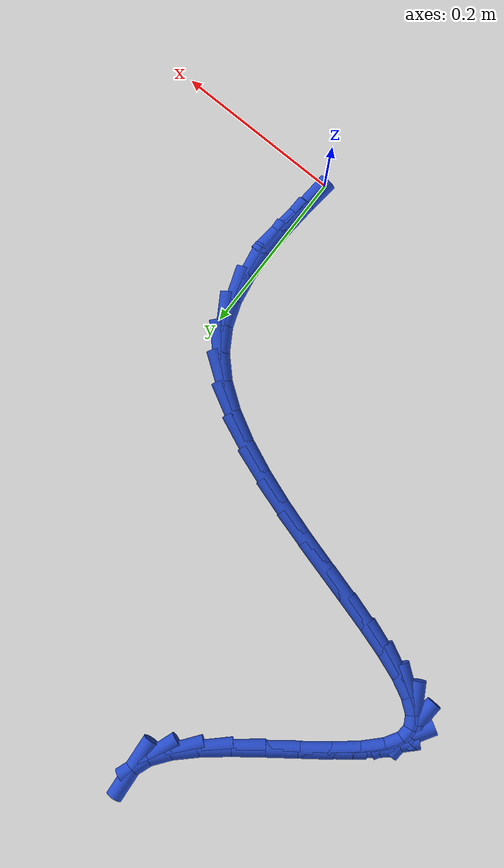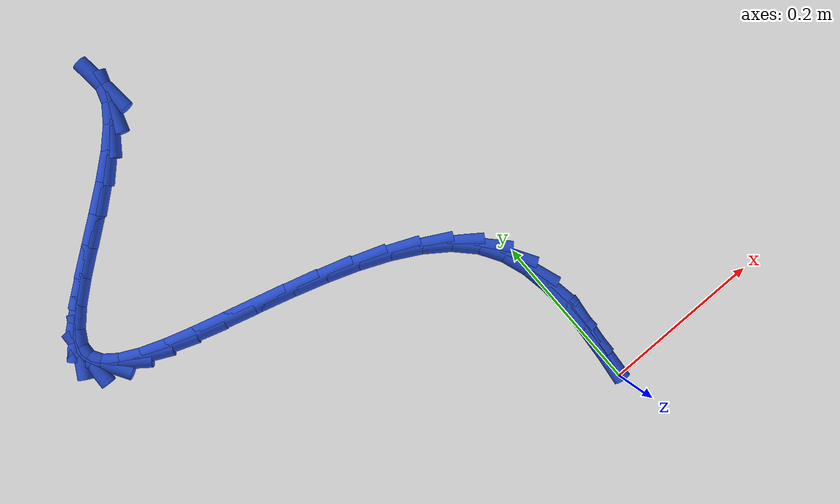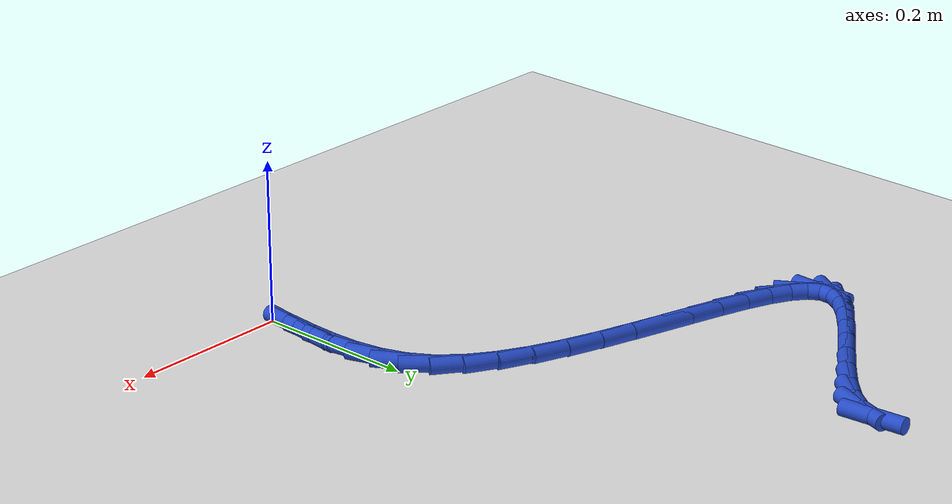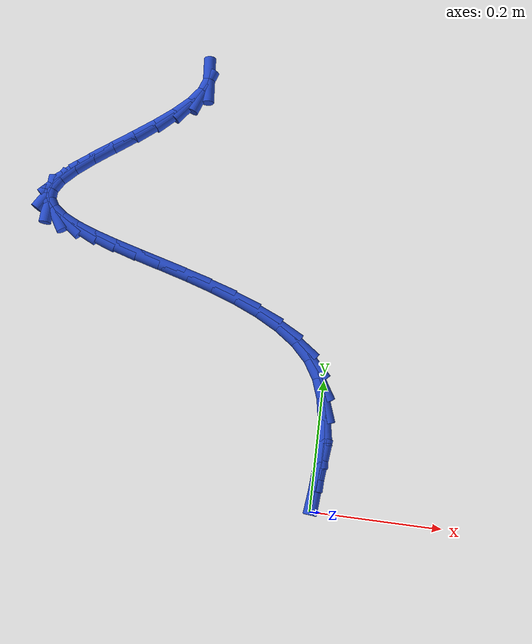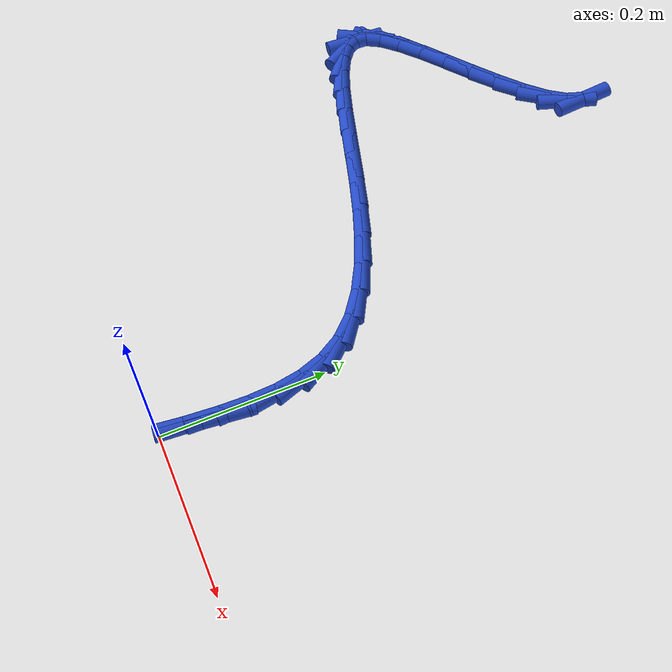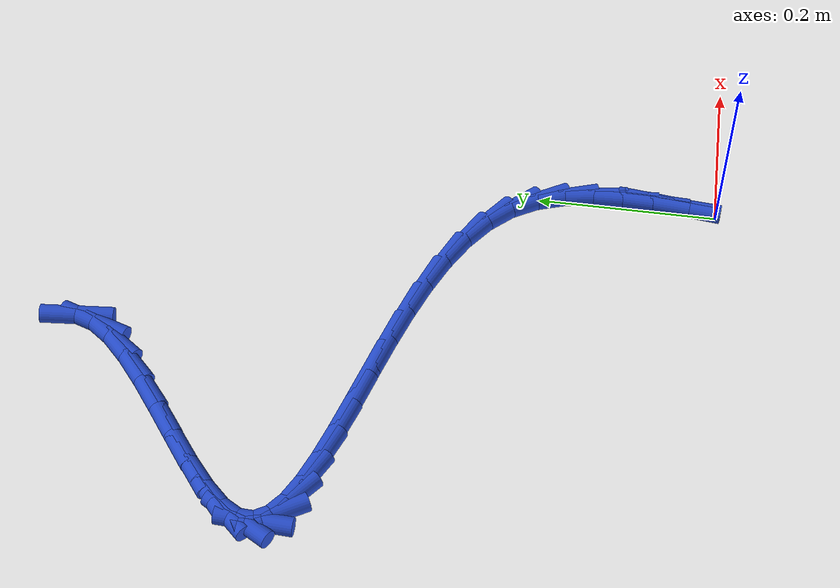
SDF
<sdf version="1.6">
 <world name="default">
  <model name="ground_plane">
   <static>1</static>
   <link name="link">
    <collision name="collision">
     <geometry><plane><normal>0 0 1</normal><size>100 100</size></plane></geometry>
     <surface><friction><ode><mu>100</mu><mu2>50</mu2></ode></friction></surface>
    </collision>
    <visual name="visual">
     <cast_shadows>0</cast_shadows>
     <geometry><plane><normal>0 0 1</normal><size>100 100</size></plane></geometry>
     <material>
      <script><uri>file://media/materials/scripts/gazebo.material</uri><name>Gazebo/WhiteGlow</name></script>
     </material>
    </visual>
   </link>
  </model>
  <model name="line">
   <link name="link_1">
    <pose>0.0034936658325562106 0.03521519313748598 0.01 0 1.57 1.4887428754856245</pose>
    <collision name="collision">
     <geometry><cylinder><radius>0.01</radius><length>0.08</length></cylinder></geometry>
    </collision>
    <visual name="visual">
     <material>
      <script><name>Gazebo/Blue</name><uri>file://media/materials/scripts/gazebo.material</uri></script>
     </material>
     <geometry><cylinder><radius>0.01</radius><length>0.08</length></cylinder></geometry>
    </visual>
   </link>
   <link name="link_2">
    <pose>0.006408961889988054 0.0706646520076782 0.01 0 1.57 1.536097298039894</pose>
    <collision name="collision">
     <geometry><cylinder><radius>0.01</radius><length>0.08</length></cylinder></geometry>
    </collision>
    <visual name="visual">
     <material>
      <script><name>Gazebo/Blue</name><uri>file://media/materials/scripts/gazebo.material</uri></script>
     </material>
     <geometry><cylinder><radius>0.01</radius><length>0.08</length></cylinder></geometry>
    </visual>
   </link>
   <link name="link_3">
    <pose>0.007626882758057852 0.10575013050941472 0.01 0 1.57 -1.5239868349404162</pose>
    <collision name="collision">
     <geometry><cylinder><radius>0.01</radius><length>0.08</length></cylinder></geometry>
    </collision>
    <visual name="visual">
     <material>
      <script><name>Gazebo/Blue</name><uri>file://media/materials/scripts/gazebo.material</uri></script>
     </material>
     <geometry><cylinder><radius>0.01</radius><length>0.08</length></cylinder></geometry>
    </visual>
   </link>
   <link name="link_4">
    <pose>0.006028423022527976 0.1398733825415338 0.01 0 1.57 -1.4024606938984574</pose>
    <collision name="collision">
     <geometry><cylinder><radius>0.01</radius><length>0.08</length></cylinder></geometry>
    </collision>
    <visual name="visual">
     <material>
      <script><name>Gazebo/Blue</name><uri>file://media/materials/scripts/gazebo.material</uri></script>
     </material>
     <geometry><cylinder><radius>0.01</radius><length>0.08</length></cylinder></geometry>
    </visual>
   </link>
   <link name="link_5">
    <pose>0.0004945772691608008 0.17243616200287354 0.01 0 1.57 -1.2356807022298957</pose>
    <collision name="collision">
     <geometry><cylinder><radius>0.01</radius><length>0.08</length></cylinder></geometry>
    </collision>
    <visual name="visual">
     <material>
      <script><name>Gazebo/Blue</name><uri>file://media/materials/scripts/gazebo.material</uri></script>
     </material>
     <geometry><cylinder><radius>0.01</radius><length>0.08</length></cylinder></geometry>
    </visual>
   </link>
   <link name="link_6">
    <pose>-0.010093659916281299 0.2028402227922723 0.01 0 1.57 -1.0257785120612315</pose>
    <collision name="collision">
     <geometry><cylinder><radius>0.01</radius><length>0.08</length></cylinder></geometry>
    </collision>
    <visual name="visual">
     <material>
      <script><name>Gazebo/Blue</name><uri>file://media/materials/scripts/gazebo.material</uri></script>
     </material>
     <geometry><cylinder><radius>0.01</radius><length>0.08</length></cylinder></geometry>
    </visual>
   </link>
   <link name="link_7">
    <pose>-0.026855293948035965 0.2304873188085681 0.01 0 1.57 -0.8015866358535872</pose>
    <collision name="collision">
     <geometry><cylinder><radius>0.01</radius><length>0.08</length></cylinder></geometry>
    </collision>
    <visual name="visual">
     <material>
      <script><name>Gazebo/Blue</name><uri>file://media/materials/scripts/gazebo.material</uri></script>
     </material>
     <geometry><cylinder><radius>0.01</radius><length>0.08</length></cylinder></geometry>
    </visual>
   </link>
   <link name="link_8">
    <pose>-0.050527521842968964 0.2549386618676007 0.01 0 1.57 -0.624680463261912</pose>
    <collision name="collision">
     <geometry><cylinder><radius>0.01</radius><length>0.08</length></cylinder></geometry>
    </collision>
    <visual name="visual">
     <material>
      <script><name>Gazebo/Blue</name><uri>file://media/materials/scripts/gazebo.material</uri></script>
     </material>
     <geometry><cylinder><radius>0.01</radius><length>0.08</length></cylinder></geometry>
    </visual>
   </link>
   <link name="link_9">
    <pose>-0.08029753828067984 0.27640280456071237 0.01 0 1.57 -0.49808622027171306</pose>
    <collision name="collision">
     <geometry><cylinder><radius>0.01</radius><length>0.08</length></cylinder></geometry>
    </collision>
    <visual name="visual">
     <material>
      <script><name>Gazebo/Blue</name><uri>file://media/materials/scripts/gazebo.material</uri></script>
     </material>
     <geometry><cylinder><radius>0.01</radius><length>0.08</length></cylinder></geometry>
    </visual>
   </link>
   <link name="link_10">
    <pose>-0.11495926056426602 0.2952525472844073 0.01 0 1.57 -0.4087093442081795</pose>
    <collision name="collision">
     <geometry><cylinder><radius>0.01</radius><length>0.08</length></cylinder></geometry>
    </collision>
    <visual name="visual">
     <material>
      <script><name>Gazebo/Blue</name><uri>file://media/materials/scripts/gazebo.material</uri></script>
     </material>
     <geometry><cylinder><radius>0.01</radius><length>0.08</length></cylinder></geometry>
    </visual>
   </link>
   <link name="link_11">
    <pose>-0.15330660595031415 0.31186069045461484 0.01 0 1.57 -0.3464587325183403</pose>
    <collision name="collision">
     <geometry><cylinder><radius>0.01</radius><length>0.08</length></cylinder></geometry>
    </collision>
    <visual name="visual">
     <material>
      <script><name>Gazebo/Blue</name><uri>file://media/materials/scripts/gazebo.material</uri></script>
     </material>
     <geometry><cylinder><radius>0.01</radius><length>0.08</length></cylinder></geometry>
    </visual>
   </link>
   <link name="link_12">
    <pose>-0.19413349169541058 0.32660003448726405 0.01 0 1.57 -0.3047661399730271</pose>
    <collision name="collision">
     <geometry><cylinder><radius>0.01</radius><length>0.08</length></cylinder></geometry>
    </collision>
    <visual name="visual">
     <material>
      <script><name>Gazebo/Blue</name><uri>file://media/materials/scripts/gazebo.material</uri></script>
     </material>
     <geometry><cylinder><radius>0.01</radius><length>0.08</length></cylinder></geometry>
    </visual>
   </link>
   <link name="link_13">
    <pose>-0.23623383505614207 0.3398433797982843 0.01 0 1.57 -0.2798825315152923</pose>
    <collision name="collision">
     <geometry><cylinder><radius>0.01</radius><length>0.08</length></cylinder></geometry>
    </collision>
    <visual name="visual">
     <material>
      <script><name>Gazebo/Blue</name><uri>file://media/materials/scripts/gazebo.material</uri></script>
     </material>
     <geometry><cylinder><radius>0.01</radius><length>0.08</length></cylinder></geometry>
    </visual>
   </link>
   <link name="link_14">
    <pose>-0.2784015532890951 0.35196352680360454 0.01 0 1.57 -0.27033132914279184</pose>
    <collision name="collision">
     <geometry><cylinder><radius>0.01</radius><length>0.08</length></cylinder></geometry>
    </collision>
    <visual name="visual">
     <material>
      <script><name>Gazebo/Blue</name><uri>file://media/materials/scripts/gazebo.material</uri></script>
     </material>
     <geometry><cylinder><radius>0.01</radius><length>0.08</length></cylinder></geometry>
    </visual>
   </link>
   <link name="link_15">
    <pose>-0.3194305636508561 0.363333275919154 0.01 0 1.57 -0.27685356769774777</pose>
    <collision name="collision">
     <geometry><cylinder><radius>0.01</radius><length>0.08</length></cylinder></geometry>
    </collision>
    <visual name="visual">
     <material>
      <script><name>Gazebo/Blue</name><uri>file://media/materials/scripts/gazebo.material</uri></script>
     </material>
     <geometry><cylinder><radius>0.01</radius><length>0.08</length></cylinder></geometry>
    </visual>
   </link>
   <link name="link_16">
    <pose>-0.3581147833980116 0.37432542756086185 0.01 0 1.57 -0.3030970668714215</pose>
    <collision name="collision">
     <geometry><cylinder><radius>0.01</radius><length>0.08</length></cylinder></geometry>
    </collision>
    <visual name="visual">
     <material>
      <script><name>Gazebo/Blue</name><uri>file://media/materials/scripts/gazebo.material</uri></script>
     </material>
     <geometry><cylinder><radius>0.01</radius><length>0.08</length></cylinder></geometry>
    </visual>
   </link>
   <link name="link_17">
    <pose>-0.39324812978714846 0.3853127821446573 0.01 0 1.57 -0.35773735814414226</pose>
    <collision name="collision">
     <geometry><cylinder><radius>0.01</radius><length>0.08</length></cylinder></geometry>
    </collision>
    <visual name="visual">
     <material>
      <script><name>Gazebo/Blue</name><uri>file://media/materials/scripts/gazebo.material</uri></script>
     </material>
     <geometry><cylinder><radius>0.01</radius><length>0.08</length></cylinder></geometry>
    </visual>
   </link>
   <link name="link_18">
    <pose>-0.4236245200748529 0.39666814008646956 0.01 0 1.57 -0.46001962723984324</pose>
    <collision name="collision">
     <geometry><cylinder><radius>0.01</radius><length>0.08</length></cylinder></geometry>
    </collision>
    <visual name="visual">
     <material>
      <script><name>Gazebo/Blue</name><uri>file://media/materials/scripts/gazebo.material</uri></script>
     </material>
     <geometry><cylinder><radius>0.01</radius><length>0.08</length></cylinder></geometry>
    </visual>
   </link>
   <link name="link_19">
    <pose>-0.44803787151771163 0.40876430180222756 0.01 0 1.57 -0.6536877796746867</pose>
    <collision name="collision">
     <geometry><cylinder><radius>0.01</radius><length>0.08</length></cylinder></geometry>
    </collision>
    <visual name="visual">
     <material>
      <script><name>Gazebo/Blue</name><uri>file://media/materials/scripts/gazebo.material</uri></script>
     </material>
     <geometry><cylinder><radius>0.01</radius><length>0.08</length></cylinder></geometry>
    </visual>
   </link>
   <link name="link_20">
    <pose>-0.46528210137231124 0.4219740677078609 0.01 0 1.57 -1.0278129257595885</pose>
    <collision name="collision">
     <geometry><cylinder><radius>0.01</radius><length>0.08</length></cylinder></geometry>
    </collision>
    <visual name="visual">
     <material>
      <script><name>Gazebo/Blue</name><uri>file://media/materials/scripts/gazebo.material</uri></script>
     </material>
     <geometry><cylinder><radius>0.01</radius><length>0.08</length></cylinder></geometry>
    </visual>
   </link>
   <link name="link_21">
    <pose>-0.4741511268952381 0.4366702382192983 0.01 0 1.57 1.5277998645085293</pose>
    <collision name="collision">
     <geometry><cylinder><radius>0.01</radius><length>0.08</length></cylinder></geometry>
    </collision>
    <visual name="visual">
     <material>
      <script><name>Gazebo/Blue</name><uri>file://media/materials/scripts/gazebo.material</uri></script>
     </material>
     <geometry><cylinder><radius>0.01</radius><length>0.08</length></cylinder></geometry>
    </visual>
   </link>
   <link name="link_22">
    <pose>-0.47343886534307883 0.4532256137524693 0.01 0 1.57 1.0379418911633744</pose>
    <collision name="collision">
     <geometry><cylinder><radius>0.01</radius><length>0.08</length></cylinder></geometry>
    </collision>
    <visual name="visual">
     <material>
      <script><name>Gazebo/Blue</name><uri>file://media/materials/scripts/gazebo.material</uri></script>
     </material>
     <geometry><cylinder><radius>0.01</radius><length>0.08</length></cylinder></geometry>
    </visual>
   </link>
   <link name="link_23">
    <pose>-0.4624224345290659 0.47190519831100625 0.01 0 1.57 0.8059604132337853</pose>
    <collision name="collision">
     <geometry><cylinder><radius>0.01</radius><length>0.08</length></cylinder></geometry>
    </collision>
    <visual name="visual">
     <material>
      <script><name>Gazebo/Blue</name><uri>file://media/materials/scripts/gazebo.material</uri></script>
     </material>
     <geometry><cylinder><radius>0.01</radius><length>0.08</length></cylinder></geometry>
    </visual>
   </link>
   <link name="link_24">
    <pose>-0.44269958203866644 0.4924562904442041 0.01 0 1.57 0.7000193351785056</pose>
    <collision name="collision">
     <geometry><cylinder><radius>0.01</radius><length>0.08</length></cylinder></geometry>
    </collision>
    <visual name="visual">
     <material>
      <script><name>Gazebo/Blue</name><uri>file://media/materials/scripts/gazebo.material</uri></script>
     </material>
     <geometry><cylinder><radius>0.01</radius><length>0.08</length></cylinder></geometry>
    </visual>
   </link>
   <link name="link_25">
    <pose>-0.41656387046462906 0.5144709604832284 0.01 0 1.57 0.6514729873845732</pose>
    <collision name="collision">
     <geometry><cylinder><radius>0.01</radius><length>0.08</length></cylinder></geometry>
    </collision>
    <visual name="visual">
     <material>
      <script><name>Gazebo/Blue</name><uri>file://media/materials/scripts/gazebo.material</uri></script>
     </material>
     <geometry><cylinder><radius>0.01</radius><length>0.08</length></cylinder></geometry>
    </visual>
   </link>
   <link name="link_26">
    <pose>-0.3863089936662994 0.5375412494751967 0.01 0 1.57 0.6366369635517307</pose>
    <collision name="collision">
     <geometry><cylinder><radius>0.01</radius><length>0.08</length></cylinder></geometry>
    </collision>
    <visual name="visual">
     <material>
      <script><name>Gazebo/Blue</name><uri>file://media/materials/scripts/gazebo.material</uri></script>
     </material>
     <geometry><cylinder><radius>0.01</radius><length>0.08</length></cylinder></geometry>
    </visual>
   </link>
   <link name="link_27">
    <pose>-0.3542286455030236 0.5612591984672275 0.01 0 1.57 0.6485142569291663</pose>
    <collision name="collision">
     <geometry><cylinder><radius>0.01</radius><length>0.08</length></cylinder></geometry>
    </collision>
    <visual name="visual">
     <material>
      <script><name>Gazebo/Blue</name><uri>file://media/materials/scripts/gazebo.material</uri></script>
     </material>
     <geometry><cylinder><radius>0.01</radius><length>0.08</length></cylinder></geometry>
    </visual>
   </link>
   <link name="link_28">
    <pose>-0.32261651983414713 0.5852168485064382 0.01 0 1.57 0.6895518716663629</pose>
    <collision name="collision">
     <geometry><cylinder><radius>0.01</radius><length>0.08</length></cylinder></geometry>
    </collision>
    <visual name="visual">
     <material>
      <script><name>Gazebo/Blue</name><uri>file://media/materials/scripts/gazebo.material</uri></script>
     </material>
     <geometry><cylinder><radius>0.01</radius><length>0.08</length></cylinder></geometry>
    </visual>
   </link>
   <link name="link_29">
    <pose>-0.293766310519016 0.6090062406399467 0.01 0 1.57 0.7730301202809505</pose>
    <collision name="collision">
     <geometry><cylinder><radius>0.01</radius><length>0.08</length></cylinder></geometry>
    </collision>
    <visual name="visual">
     <material>
      <script><name>Gazebo/Blue</name><uri>file://media/materials/scripts/gazebo.material</uri></script>
     </material>
     <geometry><cylinder><radius>0.01</radius><length>0.08</length></cylinder></geometry>
    </visual>
   </link>
   <link name="link_30">
    <pose>-0.2699717114169761 0.632219415914871 0.01 0 1.57 0.9338470659141276</pose>
    <collision name="collision">
     <geometry><cylinder><radius>0.01</radius><length>0.08</length></cylinder></geometry>
    </collision>
    <visual name="visual">
     <material>
      <script><name>Gazebo/Blue</name><uri>file://media/materials/scripts/gazebo.material</uri></script>
     </material>
     <geometry><cylinder><radius>0.01</radius><length>0.08</length></cylinder></geometry>
    </visual>
   </link>
   <link name="link_31">
    <pose>-0.25352641638737317 0.6544484153783291 0.01 0 1.57 1.23829610941099</pose>
    <collision name="collision">
     <geometry><cylinder><radius>0.01</radius><length>0.08</length></cylinder></geometry>
    </collision>
    <visual name="visual">
     <material>
      <script><name>Gazebo/Blue</name><uri>file://media/materials/scripts/gazebo.material</uri></script>
     </material>
     <geometry><cylinder><radius>0.01</radius><length>0.08</length></cylinder></geometry>
    </visual>
   </link>
   <link name="link_32">
    <pose>-0.24630312031296608 0.6753660539325606 0.01 0 1.57 -1.4824031763894032</pose>
    <collision name="collision">
     <geometry><cylinder><radius>0.01</radius><length>0.08</length></cylinder></geometry>
    </collision>
    <visual name="visual">
     <material>
      <script><name>Gazebo/Blue</name><uri>file://media/materials/scripts/gazebo.material</uri></script>
     </material>
     <geometry><cylinder><radius>0.01</radius><length>0.08</length></cylinder></geometry>
    </visual>
   </link>
   <link name="link_271">
    <pose>0.003727686074115031 0.03533403965092358 0.01 0 1.57 1.4459456902078807</pose>
    <collision name="collision">
     <geometry><cylinder><radius>0.01</radius><length>0.08</length></cylinder></geometry>
    </collision>
    <visual name="visual">
     <material>
      <script><name>Gazebo/Blue</name><uri>file://media/materials/scripts/gazebo.material</uri></script>
     </material>
     <geometry><cylinder><radius>0.01</radius><length>0.08</length></cylinder></geometry>
    </visual>
   </link>
   <link name="link_272">
    <pose>0.008281123822458226 0.0716154241151753 0.01 0 1.57 1.4556743662074934</pose>
    <collision name="collision">
     <geometry><cylinder><radius>0.01</radius><length>0.08</length></cylinder></geometry>
    </collision>
    <visual name="visual">
     <material>
      <script><name>Gazebo/Blue</name><uri>file://media/materials/scripts/gazebo.material</uri></script>
     </material>
     <geometry><cylinder><radius>0.01</radius><length>0.08</length></cylinder></geometry>
    </visual>
   </link>
  </model>
 </world>
</sdf>
